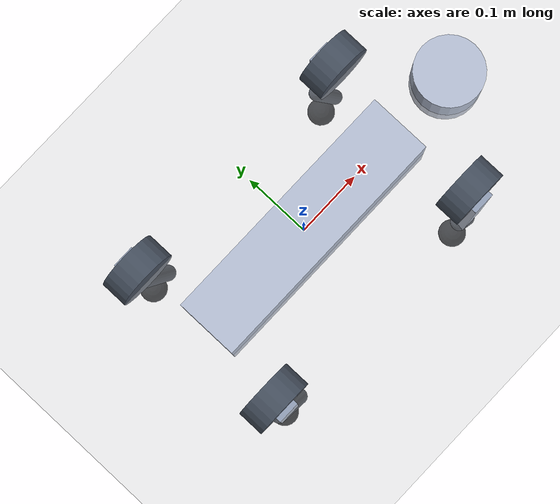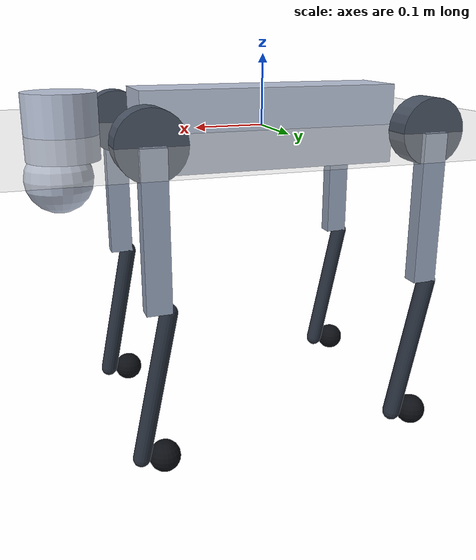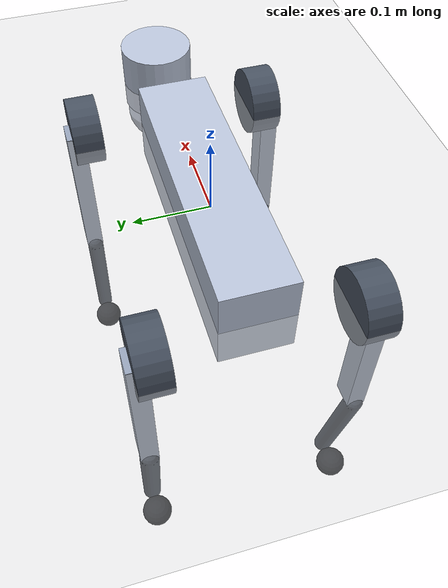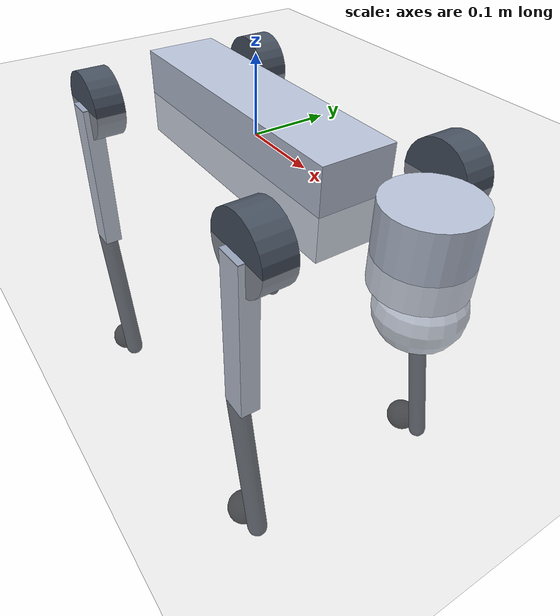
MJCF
<mujoco model="unitree_go2">
  <compiler angle="radian"/>
  <option timestep="0.002"/>
  <visual>
    <headlight ambient="0.45 0.45 0.45" diffuse="0.8 0.8 0.8" specular="0.25 0.25 0.25"/>
    <rgba haze="0.12 0.15 0.20 1"/>
    <global azimuth="135" elevation="-20"/>
  </visual>
  <asset>
    <texture name="ground_tex" type="2d" builtin="checker" rgb1="0.18 0.20 0.24" rgb2="0.32 0.35 0.40" width="512" height="512"/>
    <material name="ground_mat" texture="ground_tex" texrepeat="8 8" reflectance="0.15"/>
  </asset>
  <default>
    <joint damping="0.1" armature="0.01"/>
    <geom friction="0.8 0.1 0.1" condim="3"/>
  </default>
  <worldbody>
    <light name="key_light" directional="true" pos="0 -2 3" dir="0 0.5 -1" diffuse="0.8 0.8 0.8"/>
    <geom name="ground" type="plane" size="0 0 0.05" material="ground_mat" rgba="0.8 0.8 0.8 1"/>
    <body name="base">
      <freejoint name="floating_base"/>
      <inertial pos="0.0201531 0 -0.00510896" quat="-0.000484971 0.713304 -0.00161969 0.700853" mass="7.279" diaginertia="0.112836 0.103121 0.0257104"/>
      <geom name="base_body" size="0.1881 0.04675 0.057" type="box" rgba="0.72 0.76 0.84 1"/>
      <geom name="head_upper" size="0.05 0.045" pos="0.285 0 0.01" type="cylinder" rgba="0.72 0.76 0.84 1"/>
      <geom name="head_lower" size="0.047" pos="0.293 0 -0.06" rgba="0.72 0.76 0.84 1"/>

      <body name="FL_hip" pos="0.1934 0.0465 0">
        <inertial pos="-0.004756 0.00171489 -9.28162e-05" quat="0.497627 0.500003 0.504441 0.497899" mass="0.767" diaginertia="0.000998282 0.00065837 0.000539924"/>
        <joint name="FL_hip_joint" axis="1 0 0" range="-1.0472 1.0472"/>
        <geom name="FL_hip_geom" size="0.046 0.02" pos="0 0.08 0" quat="0.707107 0.707107 0 0" type="cylinder" rgba="0.28 0.32 0.38 1"/>
        <body name="FL_thigh" pos="0 0.0955 0">
          <inertial pos="-0.00115176 -0.0207007 -0.0303549" quat="0.622906 0.0767399 -0.0333173 0.777811" mass="1.241" diaginertia="0.00622804 0.00605116 0.00109601"/>
          <joint name="FL_thigh_joint" axis="0 1 0" range="-1.5708 3.4907"/>
          <geom name="FL_thigh_geom" size="0.1065 0.01225 0.017" pos="0 0 -0.1065" quat="0.707107 0 0.707107 0" type="box" rgba="0.58 0.63 0.72 1"/>
          <body name="FL_calf" pos="0 0 -0.213">
            <inertial pos="0.00629595 -0.000622121 -0.141417" quat="0.710672 0.00154099 -0.00450087 0.703508" mass="0.241352" diaginertia="0.0014901 0.00146356 5.31397e-05"/>
            <joint name="FL_calf_joint" axis="0 1 0" range="-2.7227 -0.83776"/>
            <geom name="FL_calf_geom" size="0.012 0.1065" pos="0.008 0 -0.1065" quat="0.994493 0 -0.104807 0" type="capsule" rgba="0.16 0.19 0.24 1"/>
            <geom name="FL_foot_geom" size="0.022" pos="-0.002 0 -0.213" rgba="0.05 0.06 0.08 1"/>
            <site name="FL_foot" pos="-0.002 0 -0.213" size="0.012" rgba="0.95 0.35 0.08 1"/>
          </body>
        </body>
      </body>

      <body name="FR_hip" pos="0.1934 -0.0465 0">
        <inertial pos="-0.00479081 -0.00171489 -9.28162e-05" quat="0.497915 0.504477 0.499987 0.497592" mass="0.767" diaginertia="0.000998028 0.000658115 0.000539924"/>
        <joint name="FR_hip_joint" axis="1 0 0" range="-1.0472 1.0472"/>
        <geom name="FR_hip_geom" size="0.046 0.02" pos="0 -0.08 0" quat="0.707107 0.707107 0 0" type="cylinder" rgba="0.28 0.32 0.38 1"/>
        <body name="FR_thigh" pos="0 -0.0955 0">
          <inertial pos="-0.0057918 0.0207007 -0.0303549" quat="0.512281 -0.0184867 0.0761773 0.855233" mass="1.241" diaginertia="0.0062377 0.00598212 0.00107542"/>
          <joint name="FR_thigh_joint" axis="0 1 0" range="-1.5708 3.4907"/>
          <geom name="FR_thigh_geom" size="0.1065 0.01225 0.017" pos="0 0 -0.1065" quat="0.707107 0 0.707107 0" type="box" rgba="0.58 0.63 0.72 1"/>
          <body name="FR_calf" pos="0 0 -0.213">
            <inertial pos="0.00629595 0.000622121 -0.141417" quat="0.703508 -0.00450087 0.00154099 0.710672" mass="0.241352" diaginertia="0.0014901 0.00146356 5.31397e-05"/>
            <joint name="FR_calf_joint" axis="0 1 0" range="-2.7227 -0.83776"/>
            <geom name="FR_calf_geom" size="0.013 0.1065" pos="0.01 0 -0.1065" quat="0.995004 0 -0.0998334 0" type="capsule" rgba="0.16 0.19 0.24 1"/>
            <geom name="FR_foot_geom" size="0.022" pos="-0.002 0 -0.213" rgba="0.05 0.06 0.08 1"/>
            <site name="FR_foot" pos="-0.002 0 -0.213" size="0.012" rgba="0.95 0.35 0.08 1"/>
          </body>
        </body>
      </body>

      <body name="RL_hip" pos="-0.1934 0.0465 0">
        <inertial pos="0.00479081 0.00171489 -9.28162e-05" quat="0.504477 0.497915 0.497592 0.499987" mass="0.767" diaginertia="0.000998028 0.000658115 0.000539924"/>
        <joint name="RL_hip_joint" axis="1 0 0" range="-1.0472 1.0472"/>
        <geom name="RL_hip_geom" size="0.046 0.02" pos="0 0.08 0" quat="0.707107 0.707107 0 0" type="cylinder" rgba="0.28 0.32 0.38 1"/>
        <body name="RL_thigh" pos="0 0.0955 0">
          <inertial pos="-0.00115176 -0.0207007 -0.0303549" quat="0.622906 0.0767399 -0.0333173 0.777811" mass="1.241" diaginertia="0.00622804 0.00605116 0.00109601"/>
          <joint name="RL_thigh_joint" axis="0 1 0" range="-0.5236 4.5379"/>
          <geom name="RL_thigh_geom" size="0.1065 0.01225 0.017" pos="0 0 -0.1065" quat="0.707107 0 0.707107 0" type="box" rgba="0.58 0.63 0.72 1"/>
          <body name="RL_calf" pos="0 0 -0.213">
            <inertial pos="0.00629595 -0.000622121 -0.141417" quat="0.710672 0.00154099 -0.00450087 0.703508" mass="0.241352" diaginertia="0.0014901 0.00146356 5.31397e-05"/>
            <joint name="RL_calf_joint" axis="0 1 0" range="-2.7227 -0.83776"/>
            <geom name="RL_calf_geom" size="0.013 0.1065" pos="0.01 0 -0.1065" quat="0.995004 0 -0.0998334 0" type="capsule" rgba="0.16 0.19 0.24 1"/>
            <geom name="RL_foot_geom" size="0.022" pos="-0.002 0 -0.213" rgba="0.05 0.06 0.08 1"/>
            <site name="RL_foot" pos="-0.002 0 -0.213" size="0.012" rgba="0.95 0.35 0.08 1"/>
          </body>
        </body>
      </body>

      <body name="RR_hip" pos="-0.1934 -0.0465 0">
        <inertial pos="0.004756 -0.00171489 -9.28162e-05" quat="0.500003 0.497627 0.497899 0.504441" mass="0.767" diaginertia="0.000998282 0.00065837 0.000539924"/>
        <joint name="RR_hip_joint" axis="1 0 0" range="-1.0472 1.0472"/>
        <geom name="RR_hip_geom" size="0.046 0.02" pos="0 -0.08 0" quat="0.707107 0.707107 0 0" type="cylinder" rgba="0.28 0.32 0.38 1"/>
        <body name="RR_thigh" pos="0 -0.0955 0">
          <inertial pos="-0.0057918 0.0207007 -0.0303549" quat="0.512281 -0.0184867 0.0761773 0.855233" mass="1.241" diaginertia="0.0062377 0.00598212 0.00107542"/>
          <joint name="RR_thigh_joint" axis="0 1 0" range="-0.5236 4.5379"/>
          <geom name="RR_thigh_geom" size="0.1065 0.01225 0.017" pos="0 0 -0.1065" quat="0.707107 0 0.707107 0" type="box" rgba="0.58 0.63 0.72 1"/>
          <body name="RR_calf" pos="0 0 -0.213">
            <inertial pos="0.00629595 0.000622121 -0.141417" quat="0.703508 -0.00450087 0.00154099 0.710672" mass="0.241352" diaginertia="0.0014901 0.00146356 5.31397e-05"/>
            <joint name="RR_calf_joint" axis="0 1 0" range="-2.7227 -0.83776"/>
            <geom name="RR_calf_geom" size="0.013 0.1065" pos="0.01 0 -0.1065" quat="0.995004 0 -0.0998334 0" type="capsule" rgba="0.16 0.19 0.24 1"/>
            <geom name="RR_foot_geom" size="0.022" pos="-0.002 0 -0.213" rgba="0.05 0.06 0.08 1"/>
            <site name="RR_foot" pos="-0.002 0 -0.213" size="0.012" rgba="0.95 0.35 0.08 1"/>
          </body>
        </body>
      </body>
    </body>
  </worldbody>
  <keyframe>
    <key name="home" qpos="0 0 0.45 1 0 0 0 0 0.8 -1.5 0 0.8 -1.5 0 0.8 -1.5 0 0.8 -1.5"/>
  </keyframe>
</mujoco>
